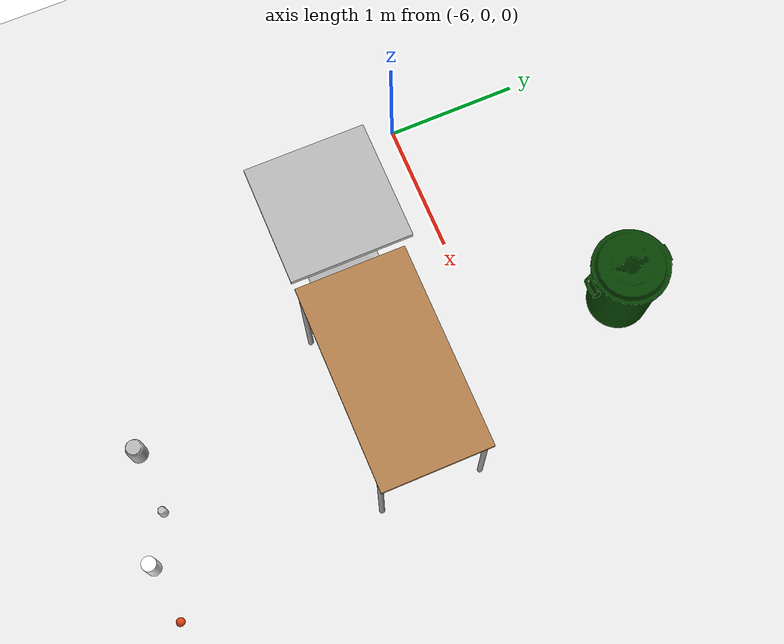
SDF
<sdf version="1.10">
 <world name="empty">
  <physics name="1ms" type="ignored">
   <max_step_size>0.001</max_step_size>
   <real_time_factor>1</real_time_factor>
   <real_time_update_rate>1000</real_time_update_rate>
  </physics>
  <plugin name="gz::sim::systems::Physics" filename="gz-sim-physics-system"/>
  <plugin name="gz::sim::systems::UserCommands" filename="gz-sim-user-commands-system"/>
  <plugin name="gz::sim::systems::SceneBroadcaster" filename="gz-sim-scene-broadcaster-system"/>
  <plugin name="gz::sim::systems::Contact" filename="gz-sim-contact-system"/>
  <gravity>0 0 -9.8000000000000007</gravity>
  <magnetic_field>5.5644999999999998e-06 2.2875799999999999e-05 -4.2388400000000002e-05</magnetic_field>
  <atmosphere type="adiabatic"/>
  <scene>
   <ambient>0.400000006 0.400000006 0.400000006 1</ambient>
   <background>0.699999988 0.699999988 0.699999988 1</background>
   <shadows>true</shadows>
  </scene>
  <model name="ground_plane">
   <static>true</static>
   <link name="link">
    <collision name="collision">
     <geometry><plane><normal>0 0 1</normal><size>100 100</size></plane></geometry>
    </collision>
    <visual name="visual">
     <geometry><plane><normal>0 0 1</normal><size>100 100</size></plane></geometry>
     <material>
      <ambient>0.800000012 0.800000012 0.800000012 1</ambient>
      <diffuse>0.800000012 0.800000012 0.800000012 1</diffuse>
      <specular>0.800000012 0.800000012 0.800000012 1</specular>
     </material>
    </visual>
    <inertial>
     <mass>1</mass>
     <inertia><ixx>1</ixx><ixy>0</ixy><ixz>0</ixz><iyy>1</iyy><iyz>0</iyz><izz>1</izz></inertia>
    </inertial>
   </link>
  </model>
  <model name="Table">
   <static>true</static>
   <link name="link">
    <collision name="surface">
     <pose>0 0 1 0 0 0</pose>
     <geometry><box><size>1.5 0.80000000000000004 0.029999999999999999</size></box></geometry>
     <surface><friction><ode><mu>0.59999999999999998</mu><mu2>0.59999999999999998</mu2></ode></friction></surface>
    </collision>
    <visual name="visual1">
     <pose>0 0 1 0 0 0</pose>
     <geometry><box><size>1.5 0.80000000000000004 0.029999999999999999</size></box></geometry>
     <material>
      <diffuse>1 1 1 1</diffuse>
      <script><uri>file://media/materials/scripts/gazebo.material</uri><name>Gazebo/Wood</name></script>
      <pbr><metal><albedo_map>model://Table/Table_Diffuse.jpg</albedo_map></metal></pbr>
     </material>
    </visual>
    <collision name="front_left_leg">
     <pose>0.68000000000000005 0.38 0.5 0 0 0</pose>
     <geometry><cylinder><radius>0.02</radius><length>1</length></cylinder></geometry>
    </collision>
    <visual name="front_left_leg">
     <pose>0.68000000000000005 0.38 0.5 0 0 0</pose>
     <geometry><cylinder><radius>0.02</radius><length>1</length></cylinder></geometry>
     <material>
      <diffuse>0.5 0.5 0.5 1</diffuse>
      <script><uri>file://media/materials/scripts/gazebo.material</uri><name>Gazebo/Grey</name></script>
     </material>
    </visual>
    <collision name="front_right_leg">
     <pose>0.68000000000000005 -0.38 0.5 0 0 0</pose>
     <geometry><cylinder><radius>0.02</radius><length>1</length></cylinder></geometry>
    </collision>
    <visual name="front_right_leg">
     <pose>0.68000000000000005 -0.38 0.5 0 0 0</pose>
     <geometry><cylinder><radius>0.02</radius><length>1</length></cylinder></geometry>
     <material>
      <diffuse>0.5 0.5 0.5 1</diffuse>
      <script><uri>file://media/materials/scripts/gazebo.material</uri><name>Gazebo/Grey</name></script>
     </material>
    </visual>
    <collision name="back_right_leg">
     <pose>-0.68000000000000005 -0.38 0.5 0 0 0</pose>
     <geometry><cylinder><radius>0.02</radius><length>1</length></cylinder></geometry>
    </collision>
    <visual name="back_right_leg">
     <pose>-0.68000000000000005 -0.38 0.5 0 0 0</pose>
     <geometry><cylinder><radius>0.02</radius><length>1</length></cylinder></geometry>
     <material>
      <diffuse>0.5 0.5 0.5 1</diffuse>
      <script><uri>file://media/materials/scripts/gazebo.material</uri><name>Gazebo/Grey</name></script>
     </material>
    </visual>
    <collision name="back_left_leg">
     <pose>-0.68000000000000005 0.38 0.5 0 0 0</pose>
     <geometry><cylinder><radius>0.02</radius><length>1</length></cylinder></geometry>
    </collision>
    <visual name="back_left_leg">
     <pose>-0.68000000000000005 0.38 0.5 0 0 0</pose>
     <geometry><cylinder><radius>0.02</radius><length>1</length></cylinder></geometry>
     <material>
      <diffuse>0.5 0.5 0.5 1</diffuse>
      <script><uri>file://media/materials/scripts/gazebo.material</uri><name>Gazebo/Grey</name></script>
     </material>
    </visual>
    <inertial>
     <mass>1</mass>
     <inertia><ixx>1</ixx><ixy>0</ixy><ixz>0</ixz><iyy>1</iyy><iyz>0</iyz><izz>1</izz></inertia>
    </inertial>
   </link>
   <pose>-3.9925528463469271 -0.83253725040341475 0 0 0 0</pose>
  </model>
  <model name="RoboCup SPL Ball">
   <static>false</static>
   <link name="ball">
    <inertial>
     <mass>0.0055999999999999999</mass>
     <inertia>
      <ixx>2.3700000000000002e-06</ixx>
      <iyy>2.3700000000000002e-06</iyy>
      <izz>2.3700000000000002e-06</izz>
      <ixy>0</ixy>
      <ixz>0</ixz>
      <iyz>0</iyz>
     </inertia>
    </inertial>
    <collision name="collision">
     <geometry><sphere><radius>0.032500000000000001</radius></sphere></geometry>
    </collision>
    <visual name="visual">
     <geometry><sphere><radius>0.032500000000000001</radius></sphere></geometry>
     <material>
      <ambient>0.870000005 0.25999999 0.0700000003 1</ambient>
      <diffuse>0.870000005 0.25999999 0.0700000003 1</diffuse>
      <specular>0.870000005 0.25999999 0.0700000003 1</specular>
     </material>
    </visual>
   </link>
   <pose>-3.1383537945416147 -2.800768543829411 0 0 0 0</pose>
  </model>
  <model name="beer">
   <link name="link">
    <pose>0 0 0.115 0 0 0</pose>
    <inertial>
     <mass>0.39000000000000001</mass>
     <inertia>
      <ixx>0.00058</ixx>
      <ixy>0</ixy>
      <ixz>0</ixz>
      <iyy>0.00058</iyy>
      <iyz>0</iyz>
      <izz>0.00019000000000000001</izz>
     </inertia>
    </inertial>
    <collision name="collision">
     <geometry><cylinder><radius>0.055</radius><length>0.23000000000000001</length></cylinder></geometry>
    </collision>
    <visual name="visual">
     <geometry><cylinder><radius>0.055</radius><length>0.23000000000000001</length></cylinder></geometry>
     <material>
      <diffuse>1 1 1 1</diffuse>
      <script>
       <uri>file:///home/nimrod/gazebo_models/beer/model://beer/materials/scripts</uri>
       <uri>model://beer/materials/textures</uri>
       <name>Beer/Diffuse</name>
      </script>
      <pbr><metal><albedo_map>model://beer/materials/textures/beer.png</albedo_map></metal></pbr>
     </material>
    </visual>
   </link>
   <pose>-3.5584009642158723 -2.8431616697129471 0 0 0 0</pose>
   <static>false</static>
  </model>
  <model name="coke_can">
   <link name="link">
    <inertial>
     <pose>-0.01 -0.012 0.14999999999999999 0 0 0</pose>
     <mass>0.39000000000000001</mass>
     <inertia>
      <ixx>0.00058</ixx>
      <ixy>0</ixy>
      <ixz>0</ixz>
      <iyy>0.00058</iyy>
      <iyz>0</iyz>
      <izz>0.00019000000000000001</izz>
     </inertia>
    </inertial>
    <collision name="collision">
     <pose>0 0 -0.46000000000000002 0 0 0</pose>
     <geometry>
      <mesh><uri>file:///home/nimrod/gazebo_models/coke_can/model://coke_can/meshes/coke_can.dae</uri></mesh>
     </geometry>
     <surface>
      <friction><ode><mu>1</mu><mu2>1</mu2></ode></friction>
      <contact>
       <ode><kp>10000000</kp><kd>1</kd><min_depth>0.001</min_depth><max_vel>0.10000000000000001</max_vel></ode>
      </contact>
     </surface>
    </collision>
    <visual name="visual">
     <pose>0 0 -0.46000000000000002 0 0 0</pose>
     <geometry>
      <mesh><uri>file:///home/nimrod/gazebo_models/coke_can/model://coke_can/meshes/coke_can.dae</uri></mesh>
     </geometry>
    </visual>
   </link>
   <pose>-3.9588955540518347 -2.6657876596253218 0 0 0 0</pose>
   <static>false</static>
  </model>
  <model name="coke_can_steel">
   <link name="link">
    <inertial>
     <mass>1000</mass>
     <inertia>
      <ixx>0.083000000000000004</ixx>
      <ixy>0</ixy>
      <ixz>0</ixz>
      <iyy>0.083000000000000004</iyy>
      <iyz>0</iyz>
      <izz>0.083000000000000004</izz>
     </inertia>
    </inertial>
    <collision name="collision">
     <geometry>
      <mesh>
       <uri>file:///home/nimrod/gazebo_models/coke_can_steel/model://coke_can_steel/meshes/coke_can.obj</uri>
       <scale>2 2 2</scale>
      </mesh>
     </geometry>
    </collision>
    <visual name="visual">
     <geometry>
      <mesh>
       <uri>file:///home/nimrod/gazebo_models/coke_can_steel/model://coke_can_steel/meshes/coke_can.obj</uri>
       <scale>2 2 2</scale>
      </mesh>
     </geometry>
    </visual>
   </link>
   <material>metal</material>
   <biofouling_rating>0</biofouling_rating>
   <roughness>0.0</roughness>
   <pose>-4.3655042350183635 -2.6630016207352223 0 0 0 0</pose>
   <static>false</static>
  </model>
  <model name="first_2015_trash_can">
   <link name="link">
    <inertial>
     <pose>0 0 0.36830000000000002 0 0 0</pose>
     <mass>4.8307599999999997</mass>
     <inertia>
      <ixx>0.28153405199999998</ixx>
      <ixy>0</ixy>
      <ixz>0</ixz>
      <iyy>0.28153405199999998</iyy>
      <iyz>0</iyz>
      <izz>0.12622283100000001</izz>
     </inertia>
    </inertial>
    <visual name="visual">
     <geometry>
      <mesh>
       <uri>file:///home/nimrod/gazebo_models/first_2015_trash_can/model://first_2015_trash_can/meshes/trash_can.dae</uri>
      </mesh>
     </geometry>
    </visual>
    <collision name="collision">
     <geometry>
      <mesh>
       <uri>file:///home/nimrod/gazebo_models/first_2015_trash_can/model://first_2015_trash_can/meshes/trash_can.dae</uri>
      </mesh>
     </geometry>
    </collision>
   </link>
   <pose>-4.0909482070452308 1.0080212444395868 0 0 0 0</pose>
   <static>false</static>
  </model>
  <model name="cafe_table">
   <static>true</static>
   <link name="link">
    <collision name="surface">
     <pose>0 0 0.755 0 0 0</pose>
     <geometry><box><size>0.91300000000000003 0.91300000000000003 0.040000000000000001</size></box></geometry>
    </collision>
    <collision name="column">
     <pose>0 0 0.37 0 0 0</pose>
     <geometry><box><size>0.042000000000000003 0.042000000000000003 0.73999999999999999</size></box></geometry>
    </collision>
    <collision name="base">
     <pose>0 0 0.02 0 0 0</pose>
     <geometry><box><size>0.56000000000000005 0.56000000000000005 0.040000000000000001</size></box></geometry>
    </collision>
    <visual name="visual">
     <geometry>
      <mesh><uri>file:///home/nimrod/gazebo_models/cafe_table/model://cafe_table/meshes/cafe_table.dae</uri></mesh>
     </geometry>
    </visual>
    <inertial>
     <mass>1</mass>
     <inertia><ixx>1</ixx><ixy>0</ixy><ixz>0</ixz><iyy>1</iyy><iyz>0</iyz><izz>1</izz></inertia>
    </inertial>
   </link>
   <pose>-5.3415695118073527 -0.76559307879826233 0 0 0 0</pose>
  </model>
  <light name="sun" type="directional">
   <pose>0 0 10 0 0 0</pose>
   <intensity>1</intensity>
   <direction>-0.5 0.10000000000000001 -0.90000000000000002</direction>
   <diffuse>0.800000012 0.800000012 0.800000012 1</diffuse>
   <specular>0.200000003 0.200000003 0.200000003 1</specular>
   <attenuation>
    <range>1000</range>
    <linear>0.01</linear>
    <constant>0.90000000000000002</constant>
    <quadratic>0.001</quadratic>
   </attenuation>
   <spot><inner_angle>0</inner_angle><outer_angle>0</outer_angle><falloff>0</falloff></spot>
  </light>
 </world>
</sdf>
